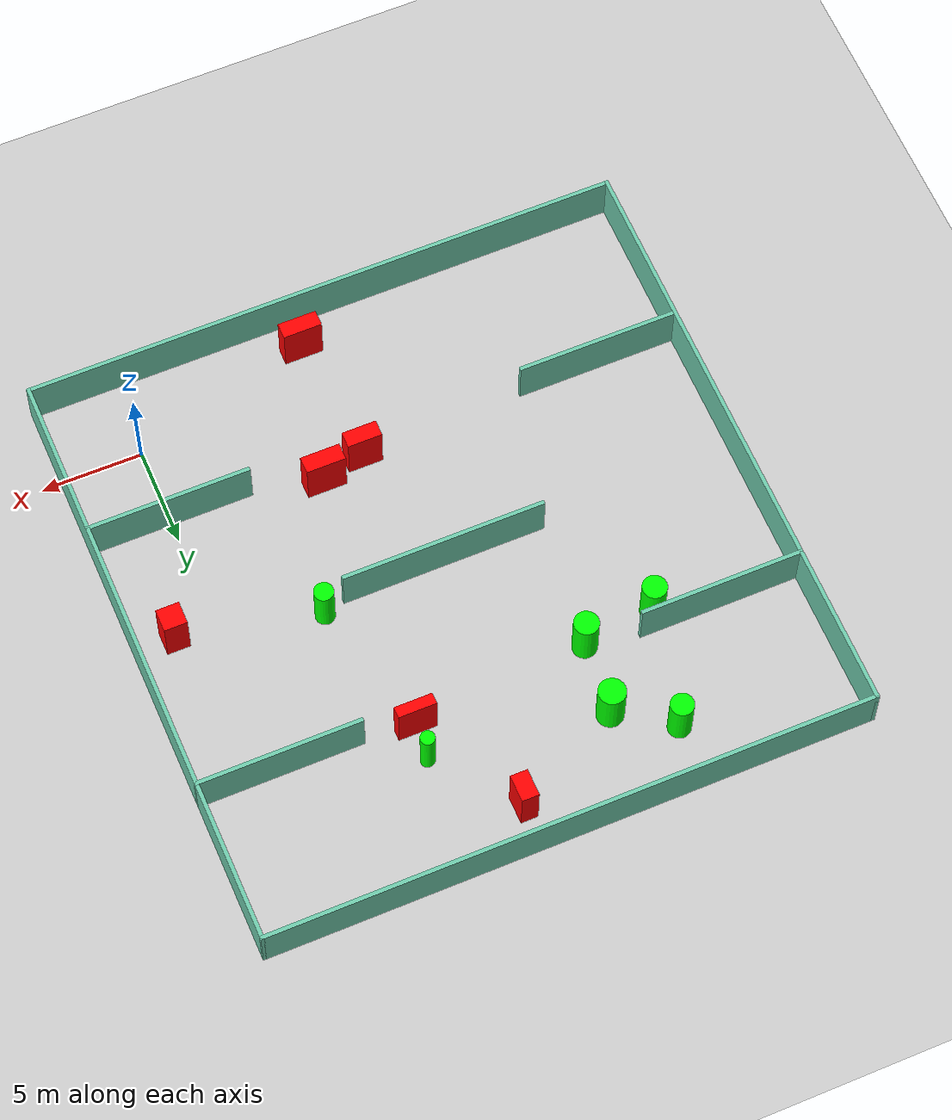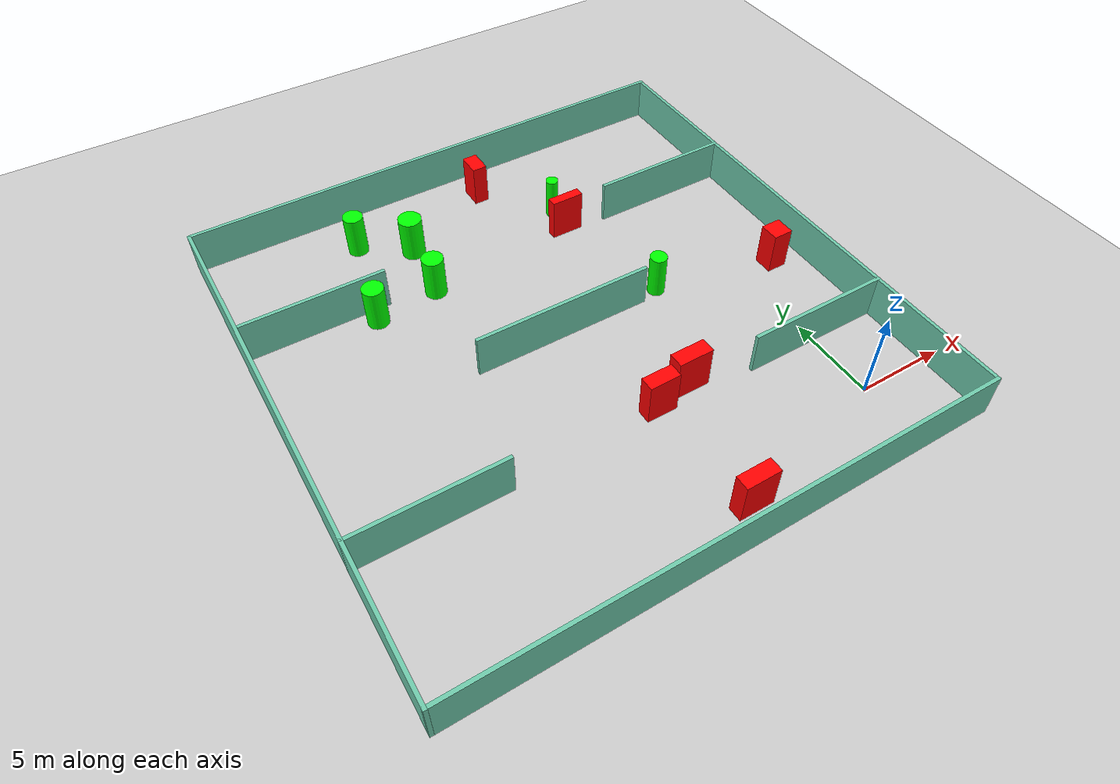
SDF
<sdf version="1.7">
 <world name="default">
  <light name="sun" type="directional">
   <pose>0 0 10 0 -0 0</pose>
   <diffuse>0.8 0.8 0.8 1</diffuse>
   <specular>0.2 0.2 0.2 1</specular>
   <attenuation>
    <range>1000</range>
    <constant>0.9</constant>
    <linear>0.01</linear>
    <quadratic>0.001</quadratic>
   </attenuation>
   <direction>-0.5 0.1 -0.9</direction>
   <spot><inner_angle>0</inner_angle><outer_angle>0</outer_angle><falloff>0</falloff></spot>
  </light>
  <model name="ground_plane">
   <static>1</static>
   <link name="link">
    <collision name="collision">
     <geometry><plane><normal>0 0 1</normal><size>100 100</size></plane></geometry>
     <surface>
      <contact><collide_bitmask>65535</collide_bitmask></contact>
      <friction><ode><mu>100</mu><mu2>50</mu2></ode></friction>
     </surface>
    </collision>
    <visual name="visual">
     <cast_shadows>0</cast_shadows>
     <geometry><plane><normal>0 0 1</normal><size>100 100</size></plane></geometry>
     <material>
      <script><uri>file://media/materials/scripts/gazebo.material</uri><name>Gazebo/Grey</name></script>
     </material>
    </visual>
   </link>
  </model>
  <gravity>0 0 -9.8</gravity>
  <magnetic_field>6e-06 2.3e-05 -4.2e-05</magnetic_field>
  <atmosphere type="adiabatic"/>
  <physics type="ode">
   <max_step_size>0.001</max_step_size>
   <real_time_factor>1</real_time_factor>
   <real_time_update_rate>1000</real_time_update_rate>
  </physics>
  <scene><ambient>0.4 0.4 0.4 1</ambient><background>0.7 0.7 0.7 1</background><shadows>1</shadows></scene>
  <spherical_coordinates>
   <surface_model>EARTH_WGS84</surface_model>
   <latitude_deg>0</latitude_deg>
   <longitude_deg>0</longitude_deg>
   <elevation>0</elevation>
   <heading_deg>0</heading_deg>
  </spherical_coordinates>
  <model name="my_base_walls">
   <link name="Wall_10">
    <collision name="Wall_10_Collision">
     <geometry><box><size>8.2 0.2 2.5</size></box></geometry>
     <pose>0 0 1.25 0 -0 0</pose>
    </collision>
    <visual name="Wall_10_Visual">
     <pose>0 0 1.25 0 -0 0</pose>
     <geometry><box><size>8.2 0.2 2.5</size></box></geometry>
     <material>
      <script><uri>file://media/materials/scripts/gazebo.material</uri><name>Gazebo/Grey</name></script>
      <ambient>0.435294 0.796078 0.67451 1</ambient>
     </material>
     <meta><layer>0</layer></meta>
    </visual>
    <pose>-11 -7 0 0 -0 0</pose>
   </link>
   <link name="Wall_12">
    <collision name="Wall_12_Collision">
     <geometry><box><size>8.2 0.2 2.5</size></box></geometry>
     <pose>0 0 1.25 0 -0 0</pose>
    </collision>
    <visual name="Wall_12_Visual">
     <pose>0 0 1.25 0 -0 0</pose>
     <geometry><box><size>8.2 0.2 2.5</size></box></geometry>
     <material>
      <script><uri>file://media/materials/scripts/gazebo.material</uri><name>Gazebo/Grey</name></script>
      <ambient>0.435294 0.796078 0.67451 1</ambient>
     </material>
     <meta><layer>0</layer></meta>
    </visual>
    <pose>-11 7 0 0 -0 0</pose>
   </link>
   <link name="Wall_14">
    <collision name="Wall_14_Collision">
     <geometry><box><size>8.2 0.2 2.5</size></box></geometry>
     <pose>0 0 1.25 0 -0 0</pose>
    </collision>
    <visual name="Wall_14_Visual">
     <pose>0 0 1.25 0 -0 0</pose>
     <geometry><box><size>8.2 0.2 2.5</size></box></geometry>
     <material>
      <script><uri>file://media/materials/scripts/gazebo.material</uri><name>Gazebo/Grey</name></script>
      <ambient>0.435294 0.796078 0.67451 1</ambient>
     </material>
     <meta><layer>0</layer></meta>
    </visual>
    <pose>11 7 0 0 -0 3.14159</pose>
   </link>
   <link name="Wall_16">
    <collision name="Wall_16_Collision">
     <geometry><box><size>10.2 0.2 2.5</size></box></geometry>
     <pose>0 0 1.25 0 -0 0</pose>
    </collision>
    <visual name="Wall_16_Visual">
     <pose>0 0 1.25 0 -0 0</pose>
     <geometry><box><size>10.2 0.2 2.5</size></box></geometry>
     <material>
      <script><uri>file://media/materials/scripts/gazebo.material</uri><name>Gazebo/Grey</name></script>
      <ambient>0.435294 0.796078 0.67451 1</ambient>
     </material>
     <meta><layer>0</layer></meta>
    </visual>
    <pose>0 0 0 0 -0 3.14159</pose>
   </link>
   <link name="Wall_2">
    <collision name="Wall_2_Collision">
     <geometry><box><size>30.2 0.2 2.5</size></box></geometry>
     <pose>0 0 1.25 0 -0 0</pose>
    </collision>
    <visual name="Wall_2_Visual">
     <pose>0 0 1.25 0 -0 0</pose>
     <geometry><box><size>30.2 0.2 2.5</size></box></geometry>
     <material>
      <script><uri>file://media/materials/scripts/gazebo.material</uri><name>Gazebo/Grey</name></script>
      <ambient>0.435294 0.796078 0.67451 1</ambient>
     </material>
     <meta><layer>0</layer></meta>
    </visual>
    <pose>0 -15 0 0 -0 3.14159</pose>
   </link>
   <link name="Wall_3">
    <collision name="Wall_3_Collision">
     <geometry><box><size>30.2 0.2 2.5</size></box></geometry>
     <pose>0 0 1.25 0 -0 0</pose>
    </collision>
    <visual name="Wall_3_Visual">
     <pose>0 0 1.25 0 -0 0</pose>
     <geometry><box><size>30.2 0.2 2.5</size></box></geometry>
     <material>
      <script><uri>file://media/materials/scripts/gazebo.material</uri><name>Gazebo/Grey</name></script>
      <ambient>0.435294 0.796078 0.67451 1</ambient>
     </material>
     <meta><layer>0</layer></meta>
    </visual>
    <pose>-15 0 0 0 -0 1.5708</pose>
   </link>
   <link name="Wall_4">
    <collision name="Wall_4_Collision">
     <geometry><box><size>30.2 0.2 2.5</size></box></geometry>
     <pose>0 0 1.25 0 -0 0</pose>
    </collision>
    <visual name="Wall_4_Visual">
     <pose>0 0 1.25 0 -0 0</pose>
     <geometry><box><size>30.2 0.2 2.5</size></box></geometry>
     <material>
      <script><uri>file://media/materials/scripts/gazebo.material</uri><name>Gazebo/Grey</name></script>
      <ambient>0.435294 0.796078 0.67451 1</ambient>
     </material>
     <meta><layer>0</layer></meta>
    </visual>
    <pose>0 15 0 0 -0 0</pose>
   </link>
   <link name="Wall_6">
    <collision name="Wall_6_Collision">
     <geometry><box><size>30.2 0.2 2.5</size></box></geometry>
     <pose>0 0 1.25 0 -0 0</pose>
    </collision>
    <visual name="Wall_6_Visual">
     <pose>0 0 1.25 0 -0 0</pose>
     <geometry><box><size>30.2 0.2 2.5</size></box></geometry>
     <material>
      <script><uri>file://media/materials/scripts/gazebo.material</uri><name>Gazebo/Grey</name></script>
      <ambient>0.435294 0.796078 0.67451 1</ambient>
     </material>
     <meta><layer>0</layer></meta>
    </visual>
    <pose>15 0 0 0 -0 1.5708</pose>
   </link>
   <link name="Wall_8">
    <collision name="Wall_8_Collision">
     <geometry><box><size>8.2 0.2 2.5</size></box></geometry>
     <pose>0 0 1.25 0 -0 0</pose>
    </collision>
    <visual name="Wall_8_Visual">
     <pose>0 0 1.25 0 -0 0</pose>
     <geometry><box><size>8.2 0.2 2.5</size></box></geometry>
     <material>
      <script><uri>file://media/materials/scripts/gazebo.material</uri><name>Gazebo/Grey</name></script>
      <ambient>0.435294 0.796078 0.67451 1</ambient>
     </material>
     <meta><layer>0</layer></meta>
    </visual>
    <pose>11 -7 0 0 -0 3.14159</pose>
   </link>
   <static>1</static>
   <pose>-11 11 0 0 -0 0</pose>
  </model>
  <model name="cylinder1">
   <static>1</static>
   <link name="link">
    <inertial>
     <mass>1</mass>
     <inertia><ixx>0.5</ixx><ixy>0</ixy><ixz>0</ixz><iyy>0.5</iyy><iyz>0</iyz><izz>1</izz></inertia>
    </inertial>
    <collision name="collision">
     <geometry><cylinder><radius>0.6045892251603673</radius><length>2.5</length></cylinder></geometry>
    </collision>
    <visual name="visual">
     <geometry><cylinder><radius>0.6045892251603673</radius><length>2.5</length></cylinder></geometry>
     <material>
      <ambient>0 1 0 1</ambient>
      <diffuse>0 1 0 1</diffuse>
      <specular>0.1 0.1 0.1 1</specular>
      <emissive>0 0 0 0</emissive>
     </material>
    </visual>
   </link>
   <pose>-19.00271390057931 17.04410645388588 1.25 0 0 0</pose>
  </model>
  <model name="cylinder2">
   <static>1</static>
   <link name="link">
    <inertial>
     <mass>1</mass>
     <inertia><ixx>0.5</ixx><ixy>0</ixy><ixz>0</ixz><iyy>0.5</iyy><iyz>0</iyz><izz>1</izz></inertia>
    </inertial>
    <collision name="collision">
     <geometry><cylinder><radius>0.6142516201087251</radius><length>2.5</length></cylinder></geometry>
    </collision>
    <visual name="visual">
     <geometry><cylinder><radius>0.6142516201087251</radius><length>2.5</length></cylinder></geometry>
     <material>
      <ambient>0 1 0 1</ambient>
      <diffuse>0 1 0 1</diffuse>
      <specular>0.1 0.1 0.1 1</specular>
      <emissive>0 0 0 0</emissive>
     </material>
    </visual>
   </link>
   <pose>-15.352565448388932 17.510282963421094 1.25 0 0 0</pose>
  </model>
  <model name="cylinder3">
   <static>1</static>
   <link name="link">
    <inertial>
     <mass>1</mass>
     <inertia><ixx>0.5</ixx><ixy>0</ixy><ixz>0</ixz><iyy>0.5</iyy><iyz>0</iyz><izz>1</izz></inertia>
    </inertial>
    <collision name="collision">
     <geometry><cylinder><radius>0.48322949186428854</radius><length>2.5</length></cylinder></geometry>
    </collision>
    <visual name="visual">
     <geometry><cylinder><radius>0.48322949186428854</radius><length>2.5</length></cylinder></geometry>
     <material>
      <ambient>0 1 0 1</ambient>
      <diffuse>0 1 0 1</diffuse>
      <specular>0.1 0.1 0.1 1</specular>
      <emissive>0 0 0 0</emissive>
     </material>
    </visual>
   </link>
   <pose>-4.869866646822658 11.331173800221034 1.25 0 0 0</pose>
  </model>
  <model name="cylinder4">
   <static>1</static>
   <link name="link">
    <inertial>
     <mass>1</mass>
     <inertia><ixx>0.5</ixx><ixy>0</ixy><ixz>0</ixz><iyy>0.5</iyy><iyz>0</iyz><izz>1</izz></inertia>
    </inertial>
    <collision name="collision">
     <geometry><cylinder><radius>0.572214065265906</radius><length>2.5</length></cylinder></geometry>
    </collision>
    <visual name="visual">
     <geometry><cylinder><radius>0.572214065265906</radius><length>2.5</length></cylinder></geometry>
     <material>
      <ambient>0 1 0 1</ambient>
      <diffuse>0 1 0 1</diffuse>
      <specular>0.1 0.1 0.1 1</specular>
      <emissive>0 0 0 0</emissive>
     </material>
    </visual>
   </link>
   <pose>-17.684542127248008 22.9511892523944 1.25 0 0 0</pose>
  </model>
  <model name="cylinder5">
   <static>1</static>
   <link name="link">
    <inertial>
     <mass>1</mass>
     <inertia><ixx>0.5</ixx><ixy>0</ixy><ixz>0</ixz><iyy>0.5</iyy><iyz>0</iyz><izz>1</izz></inertia>
    </inertial>
    <collision name="collision">
     <geometry><cylinder><radius>0.6706951780741979</radius><length>2.5</length></cylinder></geometry>
    </collision>
    <visual name="visual">
     <geometry><cylinder><radius>0.6706951780741979</radius><length>2.5</length></cylinder></geometry>
     <material>
      <ambient>0 1 0 1</ambient>
      <diffuse>0 1 0 1</diffuse>
      <specular>0.1 0.1 0.1 1</specular>
      <emissive>0 0 0 0</emissive>
     </material>
    </visual>
   </link>
   <pose>-15.023769681512013 21.121511815906313 1.25 0 0 0</pose>
  </model>
  <model name="cylinder6">
   <static>1</static>
   <link name="link">
    <inertial>
     <mass>1</mass>
     <inertia><ixx>0.5</ixx><ixy>0</ixy><ixz>0</ixz><iyy>0.5</iyy><iyz>0</iyz><izz>1</izz></inertia>
    </inertial>
    <collision name="collision">
     <geometry><cylinder><radius>0.3589708501099038</radius><length>2.5</length></cylinder></geometry>
    </collision>
    <visual name="visual">
     <geometry><cylinder><radius>0.3589708501099038</radius><length>2.5</length></cylinder></geometry>
     <material>
      <ambient>0 1 0 1</ambient>
      <diffuse>0 1 0 1</diffuse>
      <specular>0.1 0.1 0.1 1</specular>
      <emissive>0 0 0 0</emissive>
     </material>
    </visual>
   </link>
   <pose>-6.414479854250095 19.98200750657293 1.25 0 0 0</pose>
  </model>
  <model name="box1">
   <static>1</static>
   <link name="link">
    <inertial>
     <mass>1</mass>
     <inertia><ixx>0.083</ixx><ixy>0</ixy><ixz>0</ixz><iyy>0.083</iyy><iyz>0</iyz><izz>0.083</izz></inertia>
    </inertial>
    <collision name="collision">
     <geometry><box><size>1.972212560561575 0.8467126063624356 2.5</size></box></geometry>
    </collision>
    <visual name="visual">
     <geometry><box><size>1.972212560561575 0.8467126063624356 2.5</size></box></geometry>
     <material>
      <ambient>1 0 0 1</ambient>
      <diffuse>1 0 0 1</diffuse>
      <specular>0.1 0.1 0.1 1</specular>
      <emissive>0 0 0 0</emissive>
     </material>
    </visual>
    <sensor name="my_contact" type="contact">
     <contact><collision>box_collision</collision><topic>__default_topic__</topic></contact>
    </sensor>
   </link>
   <pose>-7.461050557088232 4.839597071787949 1.25 0 0 0</pose>
  </model>
  <model name="box2">
   <static>1</static>
   <link name="link">
    <inertial>
     <mass>1</mass>
     <inertia><ixx>0.083</ixx><ixy>0</ixy><ixz>0</ixz><iyy>0.083</iyy><iyz>0</iyz><izz>0.083</izz></inertia>
    </inertial>
    <collision name="collision">
     <geometry><box><size>1.1533401894186124 1.1281233645887638 2.5</size></box></geometry>
    </collision>
    <visual name="visual">
     <geometry><box><size>1.1533401894186124 1.1281233645887638 2.5</size></box></geometry>
     <material>
      <ambient>1 0 0 1</ambient>
      <diffuse>1 0 0 1</diffuse>
      <specular>0.1 0.1 0.1 1</specular>
      <emissive>0 0 0 0</emissive>
     </material>
    </visual>
    <sensor name="my_contact" type="contact">
     <contact><collision>box_collision</collision><topic>__default_topic__</topic></contact>
    </sensor>
   </link>
   <pose>2.0443670023357754 9.799249221212689 1.25 0 0 0</pose>
  </model>
  <model name="box3">
   <static>1</static>
   <link name="link">
    <inertial>
     <mass>1</mass>
     <inertia><ixx>0.083</ixx><ixy>0</ixy><ixz>0</ixz><iyy>0.083</iyy><iyz>0</iyz><izz>0.083</izz></inertia>
    </inertial>
    <collision name="collision">
     <geometry><box><size>1.9011109845483274 0.5559401308728688 2.5</size></box></geometry>
    </collision>
    <visual name="visual">
     <geometry><box><size>1.9011109845483274 0.5559401308728688 2.5</size></box></geometry>
     <material>
      <ambient>1 0 0 1</ambient>
      <diffuse>1 0 0 1</diffuse>
      <specular>0.1 0.1 0.1 1</specular>
      <emissive>0 0 0 0</emissive>
     </material>
    </visual>
    <sensor name="my_contact" type="contact">
     <contact><collision>box_collision</collision><topic>__default_topic__</topic></contact>
    </sensor>
   </link>
   <pose>-6.5240924036457475 18.289470241483997 1.25 0 0 0</pose>
  </model>
  <model name="box4">
   <static>1</static>
   <link name="link">
    <inertial>
     <mass>1</mass>
     <inertia><ixx>0.083</ixx><ixy>0</ixy><ixz>0</ixz><iyy>0.083</iyy><iyz>0</iyz><izz>0.083</izz></inertia>
    </inertial>
    <collision name="collision">
     <geometry><box><size>1.7355433471991115 0.8034079174906961 2.5</size></box></geometry>
    </collision>
    <visual name="visual">
     <geometry><box><size>1.7355433471991115 0.8034079174906961 2.5</size></box></geometry>
     <material>
      <ambient>1 0 0 1</ambient>
      <diffuse>1 0 0 1</diffuse>
      <specular>0.1 0.1 0.1 1</specular>
      <emissive>0 0 0 0</emissive>
     </material>
    </visual>
    <sensor name="my_contact" type="contact">
     <contact><collision>box_collision</collision><topic>__default_topic__</topic></contact>
    </sensor>
   </link>
   <pose>-9.640254347859042 4.3403685547087 1.25 0 0 0</pose>
  </model>
  <model name="box5">
   <static>1</static>
   <link name="link">
    <inertial>
     <mass>1</mass>
     <inertia><ixx>0.083</ixx><ixy>0</ixy><ixz>0</ixz><iyy>0.083</iyy><iyz>0</iyz><izz>0.083</izz></inertia>
    </inertial>
    <collision name="collision">
     <geometry><box><size>0.8591415936695672 1.3441118007466504 2.5</size></box></geometry>
    </collision>
    <visual name="visual">
     <geometry><box><size>0.8591415936695672 1.3441118007466504 2.5</size></box></geometry>
     <material>
      <ambient>1 0 0 1</ambient>
      <diffuse>1 0 0 1</diffuse>
      <specular>0.1 0.1 0.1 1</specular>
      <emissive>0 0 0 0</emissive>
     </material>
    </visual>
    <sensor name="my_contact" type="contact">
     <contact><collision>box_collision</collision><topic>__default_topic__</topic></contact>
    </sensor>
   </link>
   <pose>-9.514171175864664 23.833664350820634 1.25 0 0 0</pose>
  </model>
  <model name="box6">
   <static>1</static>
   <link name="link">
    <inertial>
     <mass>1</mass>
     <inertia><ixx>0.083</ixx><ixy>0</ixy><ixz>0</ixz><iyy>0.083</iyy><iyz>0</iyz><izz>0.083</izz></inertia>
    </inertial>
    <collision name="collision">
     <geometry><box><size>1.943792528079059 0.8028316869361527 2.5</size></box></geometry>
    </collision>
    <visual name="visual">
     <geometry><box><size>1.943792528079059 0.8028316869361527 2.5</size></box></geometry>
     <material>
      <ambient>1 0 0 1</ambient>
      <diffuse>1 0 0 1</diffuse>
      <specular>0.1 0.1 0.1 1</specular>
      <emissive>0 0 0 0</emissive>
     </material>
    </visual>
    <sensor name="my_contact" type="contact">
     <contact><collision>box_collision</collision><topic>__default_topic__</topic></contact>
    </sensor>
   </link>
   <pose>-9.174788065896347 -2.3587062240044223 1.25 0 0 0</pose>
  </model>
 </world>
</sdf>
